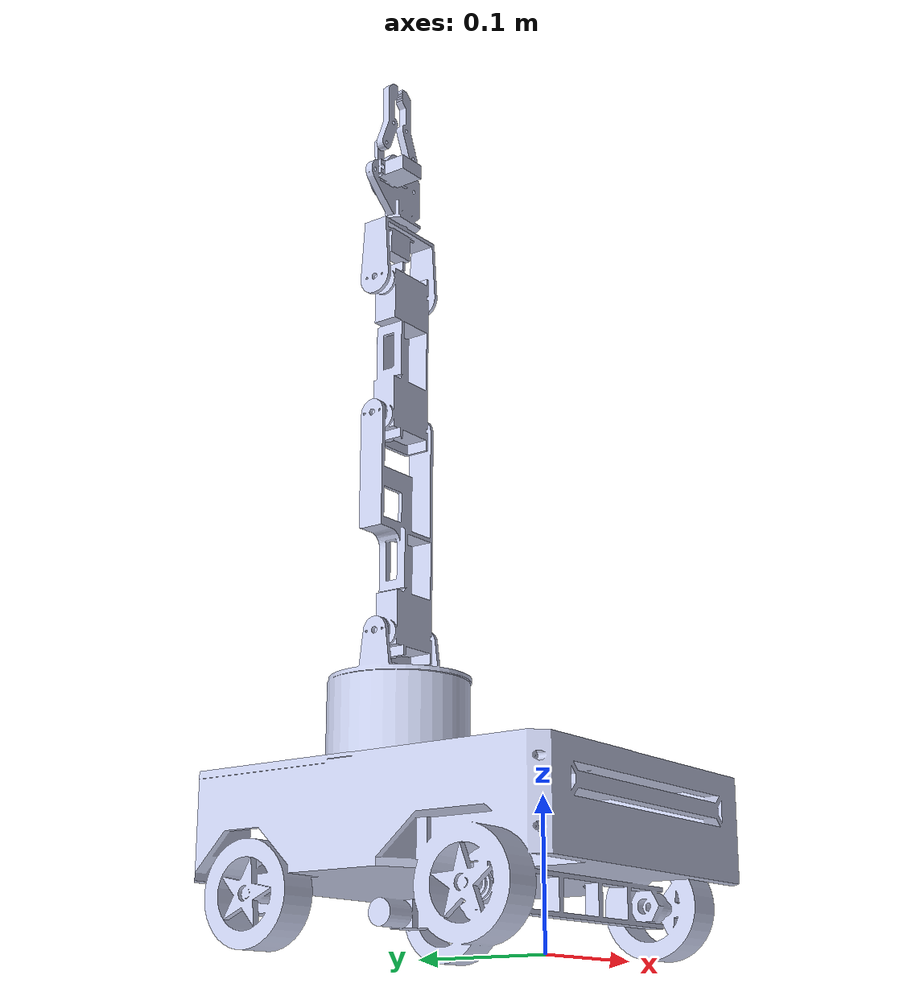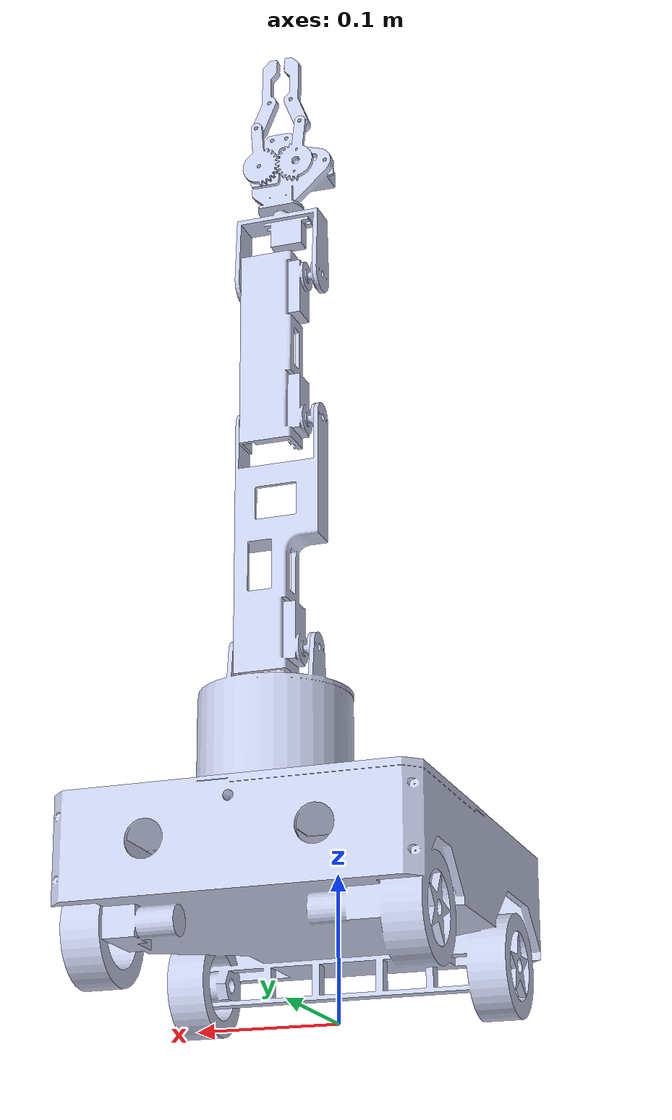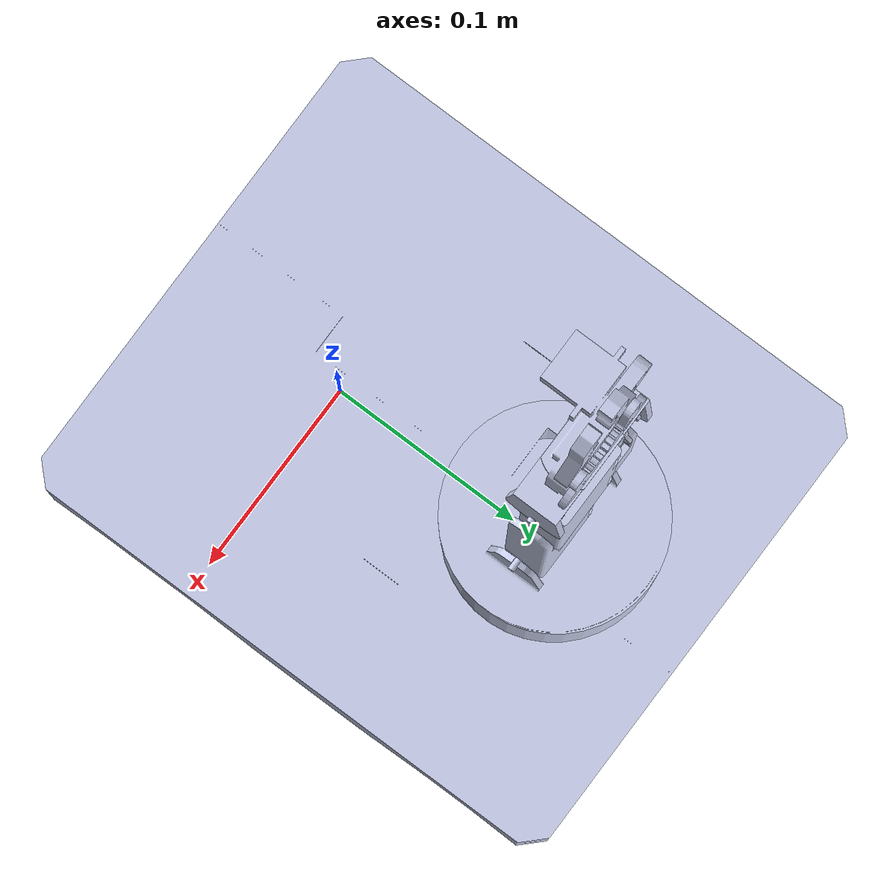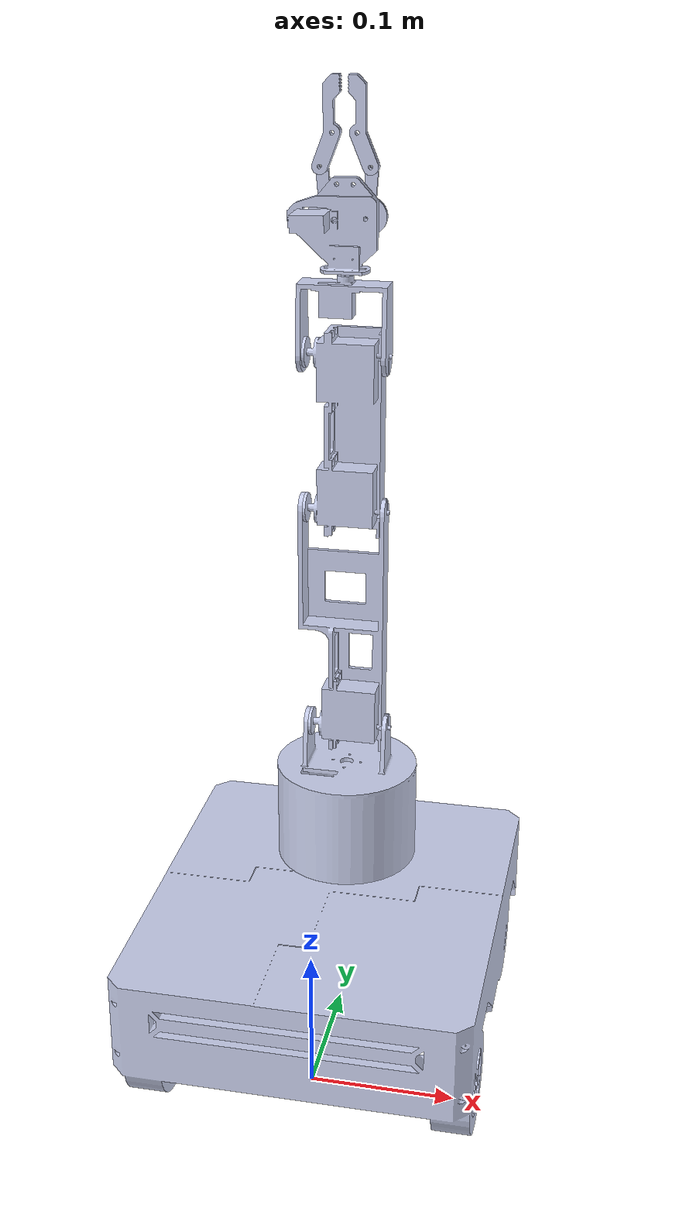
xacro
<?xml version="1.0"?>
<robot xmlns:xacro="http://www.ros.org/wiki/xacro" name="urdf1">
    <xacro:arg name="initial_positions_file" default="initial_positions.yaml" />

    <!-- Import urdf1 urdf file -->
    <xacro:include filename="$(find urdf1)/urdf/urdf1.urdf" />

    <!-- Import control_xacro -->
    <xacro:include filename="urdf1.ros2_control.xacro" />

    <xacro:urdf1_ros2_control name="FakeSystem" initial_positions_file="$(arg initial_positions_file)"/>

</robot>

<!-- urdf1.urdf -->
<robot
  name="urdf1">

  <link
    name="base_link">
    <inertial>
      <origin
        xyz="3.03454809391646E-07 0.0654054271281739 0.0736655601177138"
        rpy="0 0 0" />
      <mass
        value="1.2640955591587" />
      <inertia
        ixx="0.00159516082074683"
        ixy="-2.2247742415105E-05"
        ixz="-4.58277469127019E-06"
        iyy="0.00125585506236453"
        iyz="3.85197329946913E-08"
        izz="0.00243334487322761" />
    </inertial>
    <visual>
      <origin
        xyz="0 0 0"
        rpy="0 0 0" />
      <geometry>
        <mesh
          filename="package://urdf1/meshes/base_link.STL" />
      </geometry>
      <material
        name="">
        <color
          rgba="0.792156862745098 0.819607843137255 0.933333333333333 1" />
      </material>
    </visual>
    <collision>
      <origin
        xyz="0 0 0"
        rpy="0 0 0" />
      <geometry>
        <mesh
          filename="package://urdf1/meshes/base_link.STL" />
      </geometry>
    </collision>
  </link>
  <link
    name="rotating_base">
    <inertial>
      <origin
        xyz="3.13504042321611E-05 0.0362400660828673 0.000351260517063468"
        rpy="0 0 0" />
      <mass
        value="0.313285315014974" />
      <inertia
        ixx="0.000373106991661169"
        ixy="6.4722549241619E-08"
        ixz="-2.1848102309938E-07"
        iyy="0.000491995727417461"
        iyz="1.61924105050786E-06"
        izz="0.000347160587347121" />
    </inertial>
    <visual>
      <origin
        xyz="0 0 0"
        rpy="0 0 0" />
      <geometry>
        <mesh
          filename="package://urdf1/meshes/rotating_base.STL" />
      </geometry>
      <material
        name="">
        <color
          rgba="0.792156862745098 0.819607843137255 0.933333333333333 1" />
      </material>
    </visual>
    <collision>
      <origin
        xyz="0 0 0"
        rpy="0 0 0" />
      <geometry>
        <mesh
          filename="package://urdf1/meshes/rotating_base.STL" />
      </geometry>
    </collision>
  </link>
  <joint
    name="rotating_base_joint"
    type="revolute">
    <origin
      xyz="0 0.12 0.11715"
      rpy="1.5708 0 0" />
    <parent
      link="base_link" />
    <child
      link="rotating_base" />
    <axis
      xyz="0 1 0" />
    <limit
      lower="-3.14"
      upper="0"
      effort="1.1772"
      velocity="1.0" />
  </joint>
  <link
    name="arm1_link">
    <inertial>
      <origin
        xyz="0.00118099407101191 0.0453238372463187 -0.00291398993892447"
        rpy="0 0 0" />
      <mass
        value="0.0634132320440007" />
      <inertia
        ixx="8.04976086867397E-05"
        ixy="8.22964226041762E-06"
        ixz="2.11648019425509E-07"
        iyy="2.14499235724829E-05"
        iyz="-1.67938928108324E-06"
        izz="9.7396583366597E-05" />
    </inertial>
    <visual>
      <origin
        xyz="0 0 0"
        rpy="0 0 0" />
      <geometry>
        <mesh
          filename="package://urdf1/meshes/arm1_link.STL" />
      </geometry>
      <material
        name="">
        <color
          rgba="0.792156862745098 0.819607843137255 0.933333333333333 1" />
      </material>
    </visual>
    <collision>
      <origin
        xyz="0 0 0"
        rpy="0 0 0" />
      <geometry>
        <mesh
          filename="package://urdf1/meshes/arm1_link.STL" />
      </geometry>
    </collision>
  </link>
  <joint
    name="arm1_joint"
    type="revolute">
    <origin
      xyz="0 0.1034 0.0011445"
      rpy="0 0 0" />
    <parent
      link="rotating_base" />
    <child
      link="arm1_link" />
    <axis
      xyz="1 0 0" />
    <limit
      lower="-1.57"
      upper="1.57"
      effort="1.1772"
      velocity="1.0" />
  </joint>
  <link
    name="arm2_link">
    <inertial>
      <origin
        xyz="-0.000100941108156283 0.0534249999992844 -0.00194621903547368"
        rpy="0 0 0" />
      <mass
        value="0.0816220886614358" />
      <inertia
        ixx="4.44326095426998E-05"
        ixy="-5.88172426801534E-21"
        ixz="-5.52581167112971E-08"
        iyy="1.46571263936204E-05"
        iyz="-5.93355198753404E-10"
        izz="5.38946605780154E-05" />
    </inertial>
    <visual>
      <origin
        xyz="0 0 0"
        rpy="0 0 0" />
      <geometry>
        <mesh
          filename="package://urdf1/meshes/arm2_link.STL" />
      </geometry>
      <material
        name="">
        <color
          rgba="0.792156862745098 0.819607843137255 0.933333333333333 1" />
      </material>
    </visual>
    <collision>
      <origin
        xyz="0 0 0"
        rpy="0 0 0" />
      <geometry>
        <mesh
          filename="package://urdf1/meshes/arm2_link.STL" />
      </geometry>
    </collision>
  </link>
  <joint
    name="arm2_joint"
    type="revolute">
    <origin
      xyz="0 0.16025 -0.0025"
      rpy="0 0 0" />
    <parent
      link="arm1_link" />
    <child
      link="arm2_link" />
    <axis
      xyz="1 0 0" />
    <limit
      lower="-1.57"
      upper="1.57"
      effort="1.1772"
      velocity="1.0" />
  </joint>

  <!--headbase_link-->
<link
    name="headbase_link">
    <inertial>
      <origin
        xyz="-0.00518808119313557 -0.000190058066357773 -0.0284169952098526"
        rpy="0 0 0" />
      <mass
        value="0.0161864030608397" />
      <inertia
        ixx="4.1897504460347E-06"
        ixy="-2.0649009635548E-16"
        ixz="1.70098370738364E-07"
        iyy="1.06723085395448E-05"
        iyz="-6.56605336357891E-16"
        izz="7.48557675207618E-06" />
    </inertial>
    <visual>
      <origin
        xyz="0 0 0"
        rpy="0 0 0" />
      <geometry>
        <mesh
          filename="package://urdf1/meshes/headbase_link.STL" />
      </geometry>
      <material
        name="">
        <color
          rgba="0.792156862745098 0.819607843137255 0.933333333333333 1" />
      </material>
    </visual>
    <collision>
      <origin
        xyz="0 0 0"
        rpy="0 0 0" />
      <geometry>
        <mesh
          filename="package://urdf1/meshes/headbase_link.STL" />
      </geometry>
    </collision>
  </link>
  <joint
    name="headbase_joint"
    type="revolute">
    <origin
      xyz="0 0.10685 0"
      rpy="1.5708 0 0" />
    <parent
      link="arm2_link" />
    <child
      link="headbase_link" />
    <axis
      xyz="1 0 0" />
    <limit
      lower="-1.57"
      upper="1.57"
      effort="0"
      velocity="0" />
  </joint>

 <link
    name="headrotation_link">
    <inertial>
      <origin
        xyz="-0.00595640533666694 0.0029159696565958 -0.0419131759373086"
        rpy="0 0 0" />
      <mass
        value="0.0227875440756132" />
      <inertia
        ixx="2.82350657945554E-06"
        ixy="7.79473977652423E-08"
        ixz="-1.45047065676355E-08"
        iyy="5.423821178642E-06"
        iyz="-4.77260764126104E-08"
        izz="3.4704109006198E-06" />
    </inertial>
    <visual>
      <origin
        xyz="0 0 0"
        rpy="0 0 0" />
      <geometry>
        <mesh
          filename="package://urdf1/meshes/headrotation_link.STL" />
      </geometry>
      <material
        name="">
        <color
          rgba="0.792156862745098 0.819607843137255 0.933333333333333 1" />
      </material>
    </visual>
    <collision>
      <origin
        xyz="0 0 0"
        rpy="0 0 0" />
      <geometry>
        <mesh
          filename="package://urdf1/meshes/headrotation_link.STL" />
      </geometry>
    </collision>
  </link>
  <joint
    name="headrotation_joint"
    type="revolute">
    <origin
      xyz="-0.00309999999999264 -0.000499999999501621 -0.0389860127240922"
      rpy="0 0 0" />
    <parent
      link="headbase_link" />
    <child
      link="headrotation_link" />
    <axis
      xyz="0 0 -1" />
    <limit
      lower="-1.57"
      upper="1.57"
      effort="0"
      velocity="0" />
  </joint>

  <link
    name="left_gear">
    <inertial>
      <origin
        xyz="0.00150000001820544 0.00102096397841817 -0.00560416813543596"
        rpy="0 0 0" />
      <mass
        value="0.00200467931323718" />
      <inertia
        ixx="3.47064278837829E-07"
        ixy="-3.1260903172135E-16"
        ixz="-4.0863647823248E-15"
        iyy="2.81784350719127E-07"
        iyz="-2.1288490031294E-08"
        izz="6.82869470885583E-08" />
    </inertial>
    <visual>
      <origin
        xyz="0 0 0"
        rpy="0 0 0" />
      <geometry>
        <mesh
          filename="package://urdf1/meshes/left_gear.STL" />
      </geometry>
      <material
        name="">
        <color
          rgba="0.792156862745098 0.819607843137255 0.933333333333333 1" />
      </material>
    </visual>
    <collision>
      <origin
        xyz="0 0 0"
        rpy="0 0 0" />
      <geometry>
        <mesh
          filename="package://urdf1/meshes/left_gear.STL" />
      </geometry>
    </collision>
  </link>
  <joint
    name="left_gear_joint"
    type="revolute">
    <origin
      xyz="0.0131103567843749 -0.00650000000040618 -0.0477486647006485"
      rpy="-0.206898425467311 0 -1.5707963267949" />
    <parent
      link="headrotation_link" />
    <child
      link="left_gear" />
    <axis
      xyz="1 0 0" />
    <limit
      lower="0"
      upper="1.57"
      effort="0.1962"
      velocity="1.0" />
  </joint>
  <link
    name="left_finger">
    <inertial>
      <origin
        xyz="0.0570409792985406 0.0345819380964499 0.00300000002740594"
        rpy="0 0 0" />
      <mass
        value="0.00309838482900691" />
      <inertia
        ixx="8.43939875646886E-08"
        ixy="-2.11270108414149E-07"
        ixz="-2.14764251825149E-17"
        iyy="8.83512144063118E-07"
        iyz="-5.2707378311061E-18"
        izz="9.63258554384297E-07" />
    </inertial>
    <visual>
      <origin
        xyz="0 0 0"
        rpy="0 0 0" />
      <geometry>
        <mesh
          filename="package://urdf1/meshes/left_finger.STL" />
      </geometry>
      <material
        name="">
        <color
          rgba="0.792156862745098 0.819607843137255 0.933333333333333 1" />
      </material>
    </visual>
    <collision>
      <origin
        xyz="0 0 0"
        rpy="0 0 0" />
      <geometry>
        <mesh
          filename="package://urdf1/meshes/left_finger.STL" />
      </geometry>
    </collision>
  </link>
  <joint
    name="left_finger_joint"
    type="fixed">
    <origin
      xyz="-0.0059999999989038 -0.0152305074216201 0.00839893902138411"
      rpy="-1.5707963267949 1.37792093916735 -1.5707963267949" />
    <parent
      link="left_gear" />
    <child
      link="left_finger" />
    <axis
      xyz="0 0 0" />
  </joint>

  <link
    name="right_gear">
    <inertial>
      <origin
        xyz="-0.00150000001897563 -0.000606553145919286 -0.00586390681966698"
        rpy="0 0 0" />
      <mass
        value="0.00193211092226066" />
      <inertia
        ixx="3.44960480857915E-07"
        ixy="4.6399247940405E-19"
        ixz="-6.54006833380064E-18"
        iyy="2.81602159858084E-07"
        iyz="6.89138378216484E-09"
        izz="6.62564873832221E-08" />
    </inertial>
    <visual>
      <origin
        xyz="0 0 0"
        rpy="0 0 0" />
      <geometry>
        <mesh
          filename="package://urdf1/meshes/right_gear.STL" />
      </geometry>
      <material
        name="">
        <color
          rgba="0.792156862745098 0.819607843137255 0.933333333333333 1" />
      </material>
    </visual>
    <collision>
      <origin
        xyz="0 0 0"
        rpy="0 0 0" />
      <geometry>
        <mesh
          filename="package://urdf1/meshes/right_gear.STL" />
      </geometry>
    </collision>
  </link>
  <joint
    name="right_gear_joint"
    type="revolute">
    <origin
      xyz="-0.0138862515127949 -0.00650000000084 -0.0473207155792722"
      rpy="0.0984370296846296 0 1.5707963267949" />
    <parent
      link="headrotation_link" />
    <child
      link="right_gear" />
    <axis
      xyz="1 0 0" />
    <limit
      lower="0"
      upper="1.57"
      effort="0.1962"
      velocity="1.0" />

  </joint>
  <link
    name="right_finger">
    <inertial>
      <origin
        xyz="0.057040979299243 0.0345819380947497 0.00299999997143169"
        rpy="0 0 0" />
      <mass
        value="0.00309838482900691" />
      <inertia
        ixx="8.43939875604731E-08"
        ixy="-2.11270108406176E-07"
        ixz="1.90332865604142E-17"
        iyy="8.83512144067333E-07"
        iyz="4.95229422279801E-18"
        izz="9.63258554384295E-07" />
    </inertial>
    <visual>
      <origin
        xyz="0 0 0"
        rpy="0 0 0" />
      <geometry>
        <mesh
          filename="package://urdf1/meshes/right_finger.STL" />
      </geometry>
      <material
        name="">
        <color
          rgba="0.792156862745098 0.819607843137255 0.933333333333333 1" />
      </material>
    </visual>
    <collision>
      <origin
        xyz="0 0 0"
        rpy="0 0 0" />
      <geometry>
        <mesh
          filename="package://urdf1/meshes/right_finger.STL" />
      </geometry>
    </collision>
  </link>
  <joint
    name="right_finger"
    type="fixed">
    <origin
      xyz="0 -0.0126821477315464 0.0122006653845607"
      rpy="-1.5707963267949 1.10430536978375 -1.5707963267949" />
    <parent
      link="right_gear" />
    <child
      link="right_finger" />
    <axis
      xyz="0 0 0" />
  </joint>

  <link name="camera_link1">
  </link>

  <joint name="camera_joint1" type="fixed">
    <parent link="headbase_link"/>
    <child link="camera_link1"/>
    <origin xyz="0 -0.02 -0.05" rpy="0 3.14 0"/>
  </joint>

  <link name="camera_link2">
  </link>

  <joint name="camera_joint2" type="fixed">
    <parent link="base_link"/>
    <child link="camera_link2"/>
    <origin xyz="-0.205 0.12 0.31" rpy="0 3.14 -1.57"/>
  </joint>

  <link name="camera_link3">
  </link>

  <joint name="camera_joint3" type="fixed">
    <parent link="base_link"/>
    <child link="camera_link3"/>
    <origin xyz="0 0.205 0.31" rpy="0 3.14 -1.57"/>
  </joint>

</robot>
